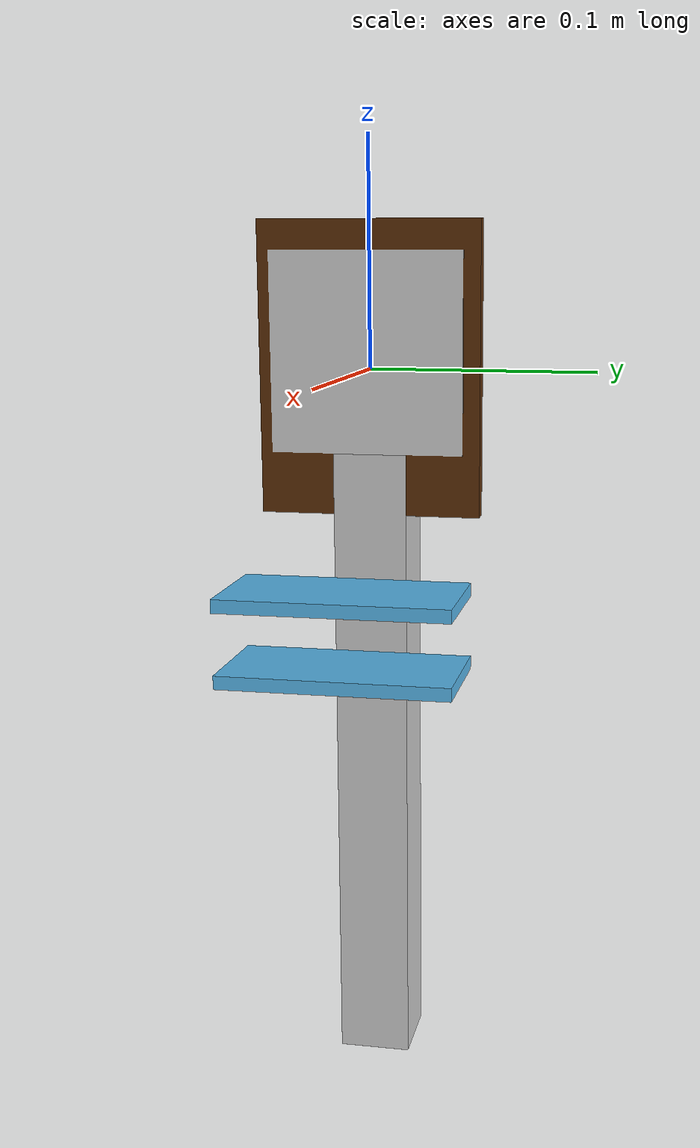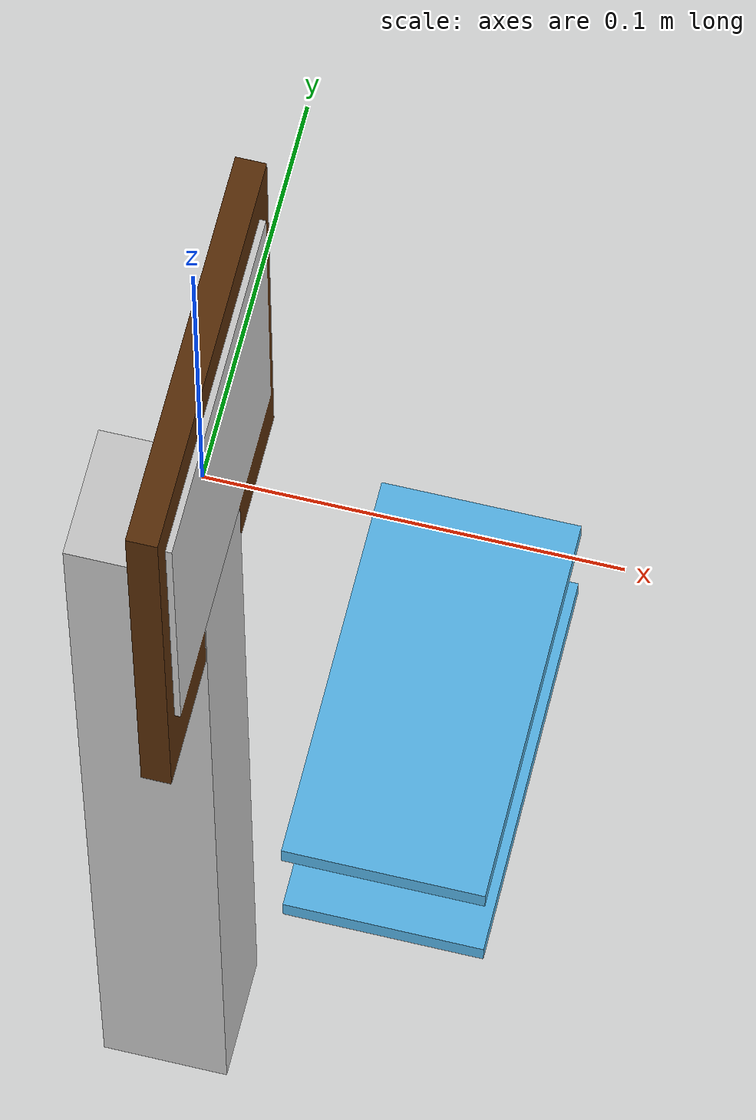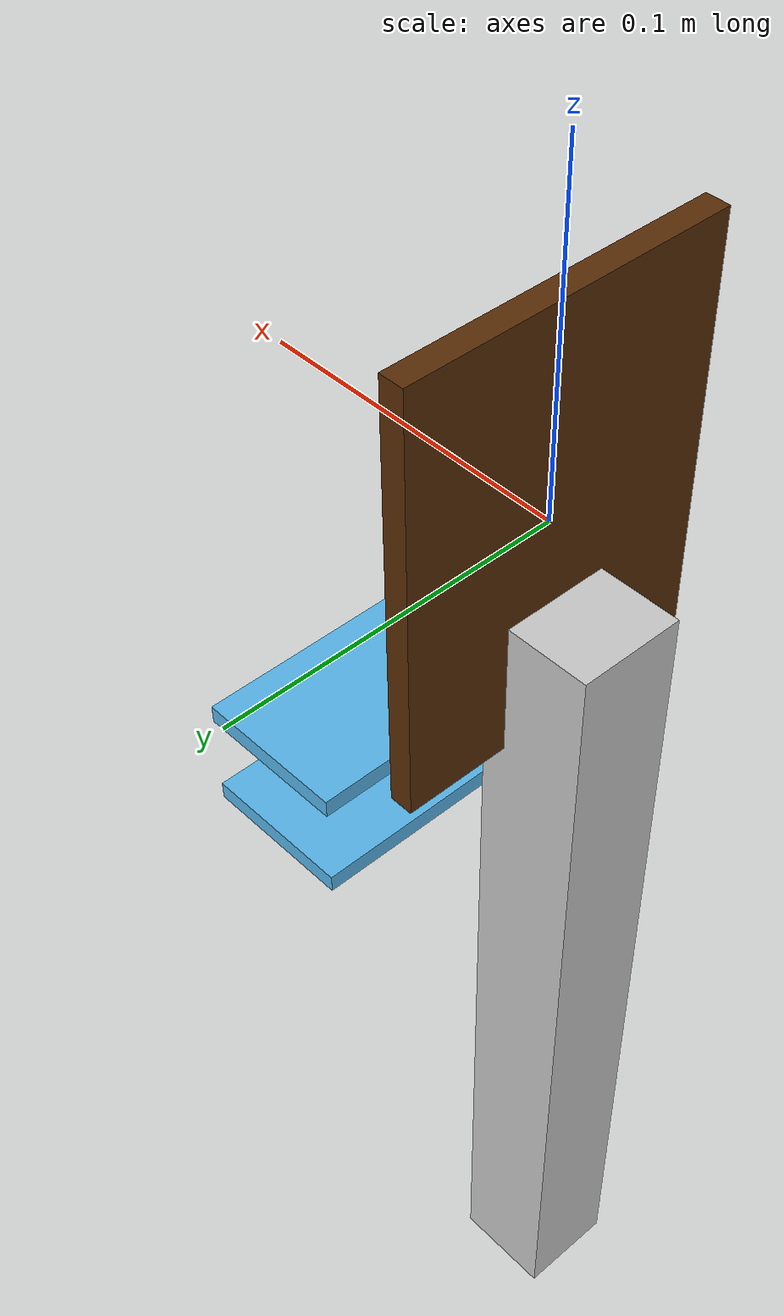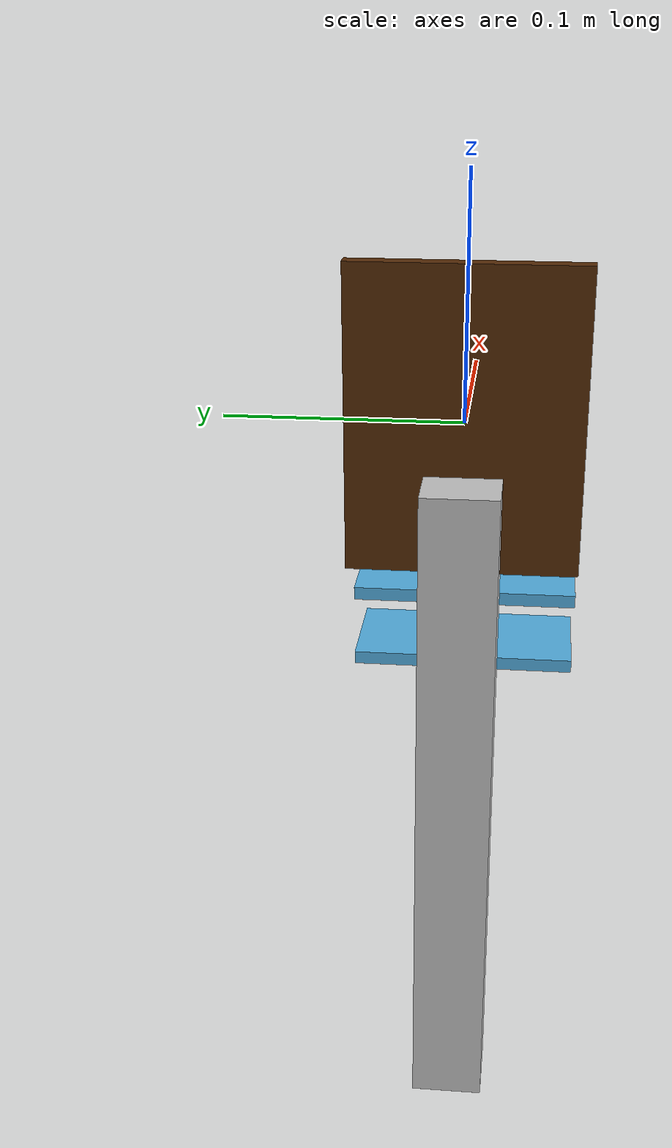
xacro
<?xml version="1.0"?>
<robot xmlns:xacro="http://wiki.ros.org/xacro" name="robot">
  <!-- helper macro -->
  <xacro:include filename="$(find charger_description)/urdf/inc/create_link.xacro"/>

  <xacro:create_link
      link_name="bar"
      xyz_offset="0 0 0"
      rpy_offset="0 0 0"
      mesh_package="charger_description"
      mesh_name="bar"
  />

  <xacro:create_link
      link_name="port"
      xyz_offset="0 0 0"
      rpy_offset="0 0 0"
      mesh_package="charger_description"
      mesh_name="port"
  />

  <xacro:create_link
      link_name="tag_203"
      xyz_offset="0 0 0"
      rpy_offset="0 0 0"
      mesh_package="charger_description"
      mesh_name="tag"
  />

  <!-- joints - main serial chain -->

  <joint name="joint_1" type="fixed">
    <parent link="bar"/>
    <child link="port"/>
    <origin xyz="0.068162 0 0.053566" rpy="0 0 0"/>
    <axis xyz="0 0 1"/>
  </joint>

  <joint name="joint_2" type="fixed">
    <parent link="tag_203"/>
    <child link="bar"/>
    <origin xyz="-0.013006 0 -0.177" rpy="0 0 0"/>
    <axis xyz="0 0 1"/>
  </joint>

</robot>

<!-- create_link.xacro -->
<robot xmlns:xacro="http://wiki.ros.org/xacro">

  <xacro:macro name="create_link" params="
        link_name
        xyz_offset
        rpy_offset
        mesh_package
        mesh_name">
    <link name="${link_name}">
      <visual>
        <origin xyz="${xyz_offset}" rpy="${rpy_offset}"/>
        <geometry>
          <mesh filename="package://${mesh_package}/meshes/${mesh_name}.dae"/>
        </geometry>
      </visual>
      <collision>
        <origin xyz="${xyz_offset}" rpy="${rpy_offset}"/>
        <geometry>
          <mesh filename="package://${mesh_package}/meshes/${mesh_name}.dae"/>
        </geometry>
      </collision>
      <inertial>
        <mass value="1"/>
        <inertia ixx="1.0" ixy="0.0" ixz="0.0" iyy="1.0" iyz="0.0" izz="1.0"/>
      </inertial>
    </link>
  </xacro:macro>
</robot>
